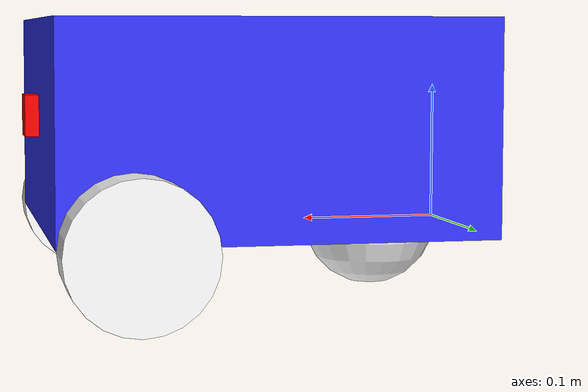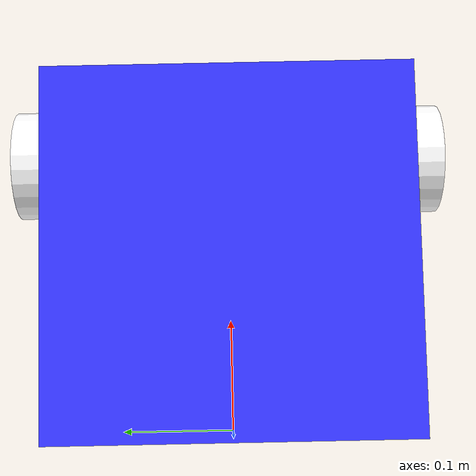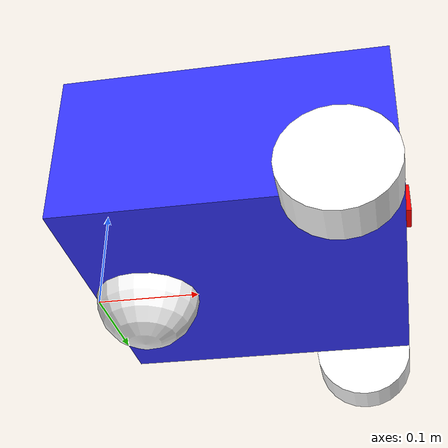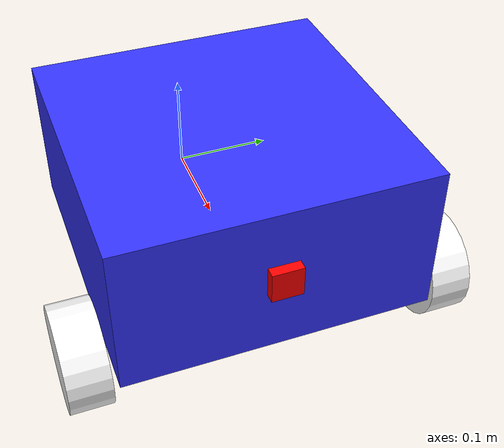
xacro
<?xml version="1.0"?>
<robot xmlns:xacro="http://www.ros.org/wiki/xacro"  name="robot">

    <xacro:include filename = "robot_core.xacro"/>

    <xacro:include filename = "gazebo_control.xacro"/>

    <xacro:include filename = "camera.xacro"/>

</robot>

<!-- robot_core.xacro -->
<robot xmlns:xacro="http://www.ros.org/wiki/xacro">

    <xacro:include filename="inertial_macros.xacro"/>

    <material name="white">
        <color rgba="1 1 1 1"/>
    </material>

    <material name="orange">
        <color rgba="1 0.3 0.1 1"/>
    </material>

    <material name="blue">
        <color rgba="0.2 0.2 1 1"/>
    </material>

    <material name="black">
        <color rgba="0 0 0 1"/>
    </material>

    <material name="red">
        <color rgba="1 0 0 1"/>
    </material>

    <!-- BASE LINK/-->

    <link name="base_link">

    </link>

    <!--CHASSIS LINK/-->

    <joint name="chassis_joint" type="fixed">
        <parent link="base_link"/>
        <child link="chassis"/>
        <origin xyz="0 0 0"/>
    </joint>

    <link name="chassis">
        <inertial>
            <mass value="0.5"/>
            <origin rpy="0 0 0" xyz="0.15 0 0.075"/>
            <inertia ixx="0.00395416666667" ixy="0" ixz="0" iyy="0.0106208333333" iyz="0" izz="0.0106208333333"/>
        </inertial>
        <visual>
            <origin xyz="0.15 0 0.075"/>
            <geometry>
                <box size="0.3 0.3 0.15"/>
            </geometry>
            <material name="blue"/>
        </visual>
        <collision>
            <origin xyz="0.15 0 0.075"/>
            <geometry>
                <box size="0.3 0.3 0.15"/>
            </geometry>
        </collision>
    </link>

    <gazebo reference = "chassis">
        <material>Gazebo/Blue</material>
    </gazebo>

    <!-- LEFT WHEEL LINK -->

    <joint name="left_wheel_joint" type="continuous">
            <parent link="base_link"/>
            <child link="left_wheel"/>
            <origin xyz="0.25 0.175 0" rpy="-${pi/2} 0 0"/>
            <axis xyz="0 0 1"/>
    </joint>

    <link name="left_wheel">
        <visual>
            <geometry>
                <cylinder radius="0.05" length="0.04"/>
            </geometry>
            <material name="white"/>
        </visual>
        <collision>
            <geometry>
                <cylinder radius="0.05" length="0.04"/>
            </geometry>
        </collision>
        <inertial>
            <mass value="0.2"/>
            <origin rpy="0 1.5707 1.5707" xyz="0 0 0"/>
            <inertia ixx="0.000526666666667" ixy="0" ixz="0" iyy="0.000526666666667" iyz="0" izz="0.001"/>
        </inertial>
    </link>

    <gazebo reference = "left_wheel">
        <material>Gazebo/White</material>
    </gazebo>

 <!-- RIGHT WHEEL LINK -->

    <joint name="right_wheel_joint" type="continuous">
            <parent link="base_link"/>
            <child link="right_wheel"/>
            <origin xyz="0.25 -0.175 0" rpy="${pi/2} 0 0"/>
            <axis xyz="0 0 -1"/>
    </joint>

    <link name="right_wheel">
        <visual>
            <origin xyz="0 0 0" rpy="0 0 0"/>
            <geometry>
                <cylinder radius="0.05" length="0.04"/>
            </geometry>
            <material name="white"/>
        </visual>
        <collision>
            <geometry>
                <cylinder radius="0.05" length="0.04"/>
            </geometry>
        </collision>
        <inertial>
            <mass value="0.2"/>
            <origin rpy="0 1.5707 1.5707" xyz="0 0 0"/>
            <inertia ixx="0.000526666666667" ixy="0" ixz="0" iyy="0.000526666666667" iyz="0" izz="0.001"/>
        </inertial>
    </link>

    <gazebo reference = "right_wheel">
        <material>Gazebo/White</material>
    </gazebo>

 <!-- CASTER WHEEL LINK-->

    <joint name="caster_wheel_joint" type="fixed">
        <parent link="chassis"/>
        <child link="caster_wheel"/>
        <origin xyz="0.05 0 0"/>
    </joint>

    <link name="caster_wheel">
        <visual>
            <geometry>
                <sphere radius="0.05"/>
            </geometry>
            <material name="white"/>
        </visual>
        <collision>
            <geometry>
                <sphere radius="0.05"/>
            </geometry>
        </collision>
        <inertial>
            <mass value="0.2"/>
            <origin rpy="0 0 0" xyz="0 0 0"/>
            <inertia ixx="0.0003" ixy="0" ixz="0" iyy="0.0003" iyz="0" izz="0.0003"/>
        </inertial>
    </link>

    <gazebo reference = "caster_wheel">
        <material>Gazebo/White</material>
        <mu1 value = "0.001"/>
        <mu2 value = "0.001"/>
    </gazebo>

</robot>

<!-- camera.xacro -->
<robot xmlns:xacro="http://www.ros.org/wiki/xacro" >

    <joint name="camera_joint" type="fixed">
        <parent link="chassis"/>
        <child link="camera_link"/>
        <origin xyz="0.305 0 0.08" rpy="0 0 0"/>
    </joint>

    <link name="camera_link">
        <visual>
            <geometry>
                <box size="0.01 0.03 0.03"/>
            </geometry>
            <material name="red"/>
        </visual>

    </link>

     <joint name="camera_optical_joint" type="fixed">
        <parent link="camera_link"/>
        <child link="camera_link_optical"/>
        <origin xyz="0 0 0" rpy="${-pi/2} 0 ${-pi/2}"/>
    </joint>

    <link name="camera_link_optical"></link>

    <gazebo reference="camera_link">
        <material>Gazebo/Red</material>

        <sensor name="camera" type="camera">
            <pose> 0 0 0 0 0 0 </pose>
            <visualize>true</visualize>
            <update_rate>10</update_rate>
            <camera>
                <horizontal_fov>1.089</horizontal_fov>
                <image>
                    <format>R8G8B8</format>
                    <width>640</width>
                    <height>480</height>
                </image>
                <clip>
                    <near>0.05</near>
                    <far>8.0</far>
                </clip>
            </camera>
            <plugin name="camera_controller" filename="libgazebo_ros_camera.so">
                <frame_name>camera_link_optical</frame_name>
            </plugin>
        </sensor>
    </gazebo>
</robot>
